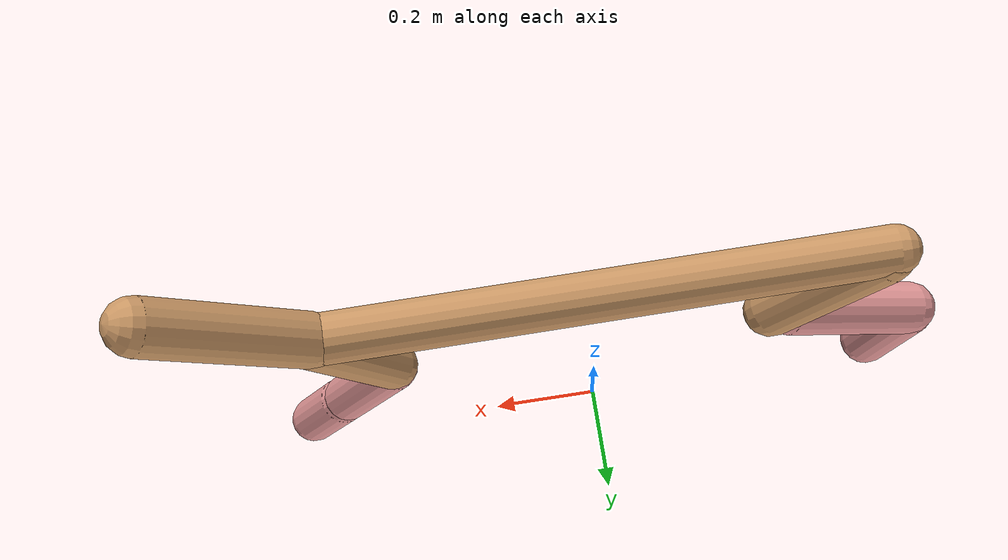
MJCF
<mujoco model="cheetah">
  <compiler angle="radian" coordinate="local" inertiafromgeom="true" settotalmass="14" />
  <default>
    <joint armature=".1" damping=".01" limited="true" solimplimit="0 .8 .03" solreflimit=".02 1" stiffness="8" />
    <geom conaffinity="0" condim="3" contype="1" friction="0.8 .1 .1" rgba="0.8 0.6 .4 1" solimp="0.0 0.8 0.01" solref="0.02 1" />
    <motor ctrllimited="true" ctrlrange="-1 1" />
  </default>
  <size nstack="300000" nuser_geom="1" />
  <option gravity="0 0 -9.81" timestep="0.01" />
  <worldbody>
    <body name="torso" pos="0.0 0.0 0.6344661353727967">
      <joint armature="0" axis="1 0 0" damping="0" limited="false" name="ignorex" pos="0 0 0" stiffness="0" type="slide" />
      <joint armature="0" axis="0 0 1" damping="0" limited="false" name="ignorez" pos="0 0 0" stiffness="0" type="slide" />
      <joint armature="0" axis="0 1 0" damping="0" limited="false" name="ignorey" pos="0 0 0" stiffness="0" type="hinge" />
      <geom fromto="-0.5 0.0 0.0 0.4892166291918364 0.0 0.0" name="torso" size="0.043668042626339845" type="capsule" />
      <geom axisangle="0 1 0 .87" name="head" pos="0.5892166291918364 0.0 0.1" size="0.0475765342754994 0.15" type="capsule" />

      <body name="bthigh" pos="-.5 0 0">
        <joint axis="0 1 0" damping="6" name="bthigh" pos="0 0 0" range="-.52 1.05" stiffness="240" type="hinge" />
        <geom axisangle="0 1 0 -3.8" name="bthigh" pos="0.09509006622273343 0.0 -0.12361708608955345" size="0.05006493023496222 0.13694710985513178" type="capsule" />
        <body name="bshin" pos="0.15018013244546685 0.0 -0.2372341721791069">
          <joint axis="0 1 0" damping="4.5" name="bshin" pos="0 0 0" range="-.785 .785" stiffness="180" type="hinge" />
          <geom axisangle="0 1 0 -2.03" name="bshin" pos="-0.13254890629823585 0.0 -0.06627445314911792" rgba="0.9 0.6 0.6 1" size="0.05006493023496222 0.14166942398806737" type="capsule" />
          <body name="bfoot" pos="-0.2650978125964717 0.0 -0.13254890629823585">
            <joint axis="0 1 0" damping="3" name="bfoot" pos="0 0 0" range="-.4 .785" stiffness="120" type="hinge" />
            <geom axisangle="0 1 0 -.27" name="bfoot" pos="0.028457501995423108 0.0 -0.09201258978520138" rgba="0.9 0.6 0.6 1" size="0.05006493023496222 0.0887795056991889" type="capsule" />
            <inertial mass="10" />
          </body>
        </body>
      </body>
      <body name="fthigh" pos="0.4892166291918364 0.0 0.0">
        <joint axis="0 1 0" damping="4.5" name="fthigh" pos="0 0 0" range="-1.5 0.8" stiffness="180" type="hinge" />
        <geom axisangle="0 1 0 .52" name="fthigh" pos="-0.06381897049933347 0.0 -0.10940394942742879" size="0.04365282940814753 0.12073291340926476" type="capsule" />
        <body name="fshin" pos="-0.12763794099866693 0.0 -0.21880789885485757">
          <joint axis="0 1 0" damping="3" name="fshin" pos="0 0 0" range="-1.2 1.1" stiffness="120" type="hinge" />
          <geom axisangle="0 1 0 -.6" name="fshin" pos="0.05927579013429304 0.0 -0.08207417095517497" rgba="0.9 0.6 0.6 1" size="0.04365282940814753 0.09622322422091777" type="capsule" />
          <body name="ffoot" pos="0.11855158026858607 0.0 -0.16414834191034994">
            <joint axis="0 1 0" damping="1.5" name="ffoot" pos="0 0 0" range="-3.1 -0.3" stiffness="60" type="hinge" />
            <geom axisangle="0 1 0 -.6" name="ffoot" pos="0.04150867358039994 0.0 -0.06456904779173325" rgba="0.9 0.6 0.6 1" size="0.04365282940814753 0.06354363863645514" type="capsule" />
            <inertial mass="10" />
          </body>
        </body>
      </body>
    </body>
  </worldbody>
  <actuator>
    <motor gear="120" joint="bthigh" name="bthigh" />
    <motor gear="90" joint="bshin" name="bshin" />
    <motor gear="60" joint="bfoot" name="bfoot" />
    <motor gear="120" joint="fthigh" name="fthigh" />
    <motor gear="60" joint="fshin" name="fshin" />
    <motor gear="30" joint="ffoot" name="ffoot" />
  </actuator>
</mujoco>
